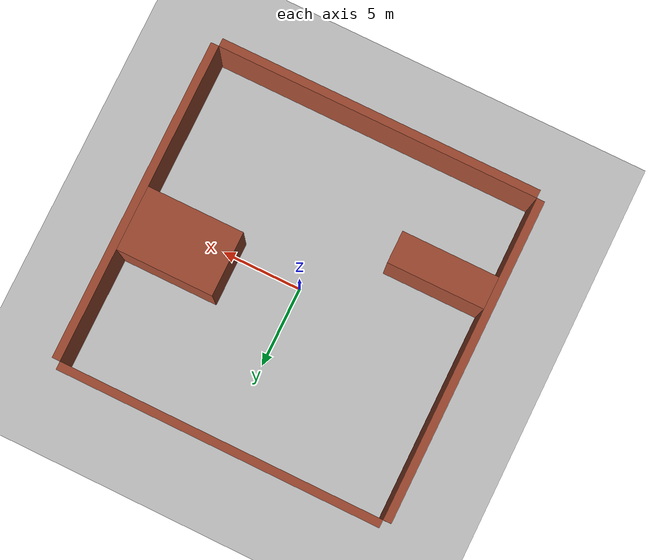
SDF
<?xml version="1.0"?>
<sdf version="1.5">
  <world name="default">
    <!-- Sun and ground plane -->
    <include>
      <uri>
model://sun
</uri>
    </include>
    <include>
      <uri>
model://ground_plane
</uri>
    </include>

    <!-- Initial camera position -->
    <gui fullscreen='0'>
      <camera name='world_camera'>
        <pose>0 4 0 0.000000 1 -4</pose>
        <view_controller>orbit</view_controller>
      </camera>
    </gui>

    <!-- Walls -->
    <model name="v1">
      <pose>0 10.25 2.5 0 0 0</pose>
      <static>true</static>
      <link name="link">
        <inertial>
          <mass>500.0</mass>
          <inertia>
            <ixx>0.51875</ixx>
            <ixy>0.0</ixy>
            <ixz>0.0</ixz>
            <iyy>0.083</iyy>
            <iyz>0.0</iyz>
            <izz>0.083</izz>
          </inertia>
        </inertial>
        <collision name="collision">
          <geometry>
            <box>
              <size>20 0.5 5</size>
            </box>
          </geometry>
        </collision>
        <visual name="visual">
          <geometry>
            <box>
              <size>20 0.5 5</size>
            </box>
          </geometry>
          <material>
            <script>
              <uri>file://media/material/scripts/gazebo.material</uri>
              <name>Gazebo/Bricks</name>
            </script>
          </material>
        </visual>
      </link>
    </model>

    <model name="v2">
      <pose>0 -10.25 2.5 0 0 0</pose>
      <static>true</static>
      <link name="link">
        <inertial>
          <mass>500.0</mass>
          <inertia>
            <ixx>0.51875</ixx>
            <ixy>0.0</ixy>
            <ixz>0.0</ixz>
            <iyy>0.083</iyy>
            <iyz>0.0</iyz>
            <izz>0.083</izz>
          </inertia>
        </inertial>
        <collision name="collision">
          <geometry>
            <box>
              <size>20 0.5 5</size>
            </box>
          </geometry>
        </collision>
        <visual name="visual">
          <geometry>
            <box>
              <size>20 0.5 5</size>
            </box>
          </geometry>
          <material>
            <script>
              <uri>file://media/material/scripts/gazebo.material</uri>
              <name>Gazebo/Bricks</name>
            </script>
          </material>
        </visual>
      </link>
    </model>

    <model name="h1">
      <pose>-10.25 0 2.5 0 0 1.57079632679
      </pose>
      <static>true</static>
      <link name="link">
        <inertial>
          <mass>500.0</mass>
          <inertia>
            <ixx>0.51875</ixx>
            <ixy>0.0</ixy>
            <ixz>0.0</ixz>
            <iyy>0.083</iyy>
            <iyz>0.0</iyz>
            <izz>0.083</izz>
          </inertia>
        </inertial>
        <collision name="collision">
          <geometry>
            <box>
              <size>20 0.5 5</size>
            </box>
          </geometry>
        </collision>
        <visual name="visual">
          <geometry>
            <box>
              <size>20 0.5 5</size>
            </box>
          </geometry>
          <material>
            <script>
              <uri>file://media/material/scripts/gazebo.material</uri>
              <name>Gazebo/Bricks</name>
            </script>
          </material>
        </visual>
      </link>
    </model>

    <model name="h2">
      <pose>10.25 0 2.5 0 0 1.57079632679</pose>
      <static>true</static>
      <link name="link">
        <inertial>
          <mass>500.0</mass>
          <inertia>
            <ixx>0.51875</ixx>
            <ixy>0.0</ixy>
            <ixz>0.0</ixz>
            <iyy>0.083</iyy>
            <iyz>0.0</iyz>
            <izz>0.083</izz>
          </inertia>
        </inertial>
        <collision name="collision">
          <geometry>
            <box>
              <size>20 0.5 5</size>
            </box>
          </geometry>
        </collision>
        <visual name="visual">
          <geometry>
            <box>
              <size>20 0.5 5</size>
            </box>
          </geometry>
          <material>
            <script>
              <uri>file://media/material/scripts/gazebo.material</uri>
              <name>Gazebo/Bricks</name>
            </script>
          </material>
        </visual>
      </link>
    </model>

    <model name="obstacle_1">
      <pose>7 1 2.5 0 0 1.57079632679</pose>
      <static>true</static>
      <link name="link">
        <inertial>
          <mass>500.0</mass>
          <inertia>
            <ixx>0.51875</ixx>
            <ixy>0.0</ixy>
            <ixz>0.0</ixz>
            <iyy>0.083</iyy>
            <iyz>0.0</iyz>
            <izz>0.083</izz>
          </inertia>
        </inertial>
        <collision name="collision">
          <geometry>
            <box>
              <size>4 6 5</size>
            </box>
          </geometry>
        </collision>
        <visual name="visual">
          <geometry>
            <box>
              <size>4 6 5</size>
            </box>
          </geometry>
          <material>
            <script>
              <uri>file://media/material/scripts/gazebo.material</uri>
              <name>Gazebo/Bricks</name>
            </script>
          </material>
        </visual>
      </link>
    </model>

    <model name="obstacle_2">
      <pose>-7 -4 2.5 0 0 1.57079632679</pose>
      <static>true</static>
      <link name="link">
        <inertial>
          <mass>500.0</mass>
          <inertia>
            <ixx>0.51875</ixx>
            <ixy>0.0</ixy>
            <ixz>0.0</ixz>
            <iyy>0.083</iyy>
            <iyz>0.0</iyz>
            <izz>0.083</izz>
          </inertia>
        </inertial>
        <collision name="collision">
          <geometry>
            <box>
              <size>2 6 5</size>
            </box>
          </geometry>
        </collision>
        <visual name="visual">
          <geometry>
            <box>
              <size>2 6 5</size>
            </box>
          </geometry>
          <material>
            <script>
              <uri>file://media/material/scripts/gazebo.material</uri>
              <name>Gazebo/Bricks</name>
            </script>
          </material>
        </visual>
      </link>
    </model>

  </world>
</sdf>
